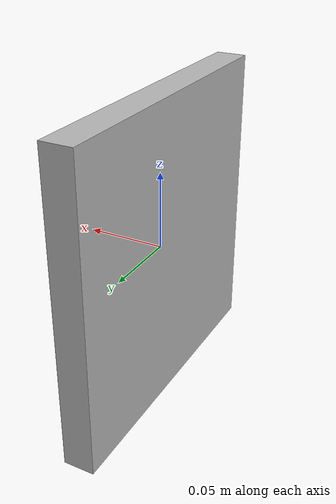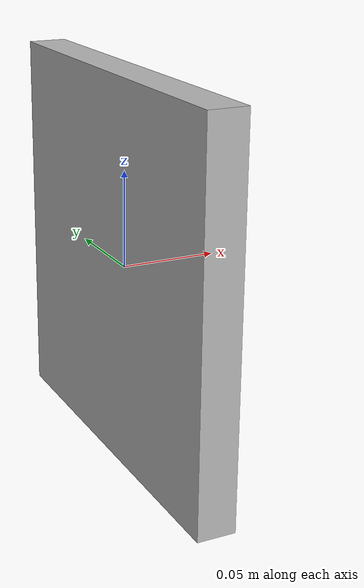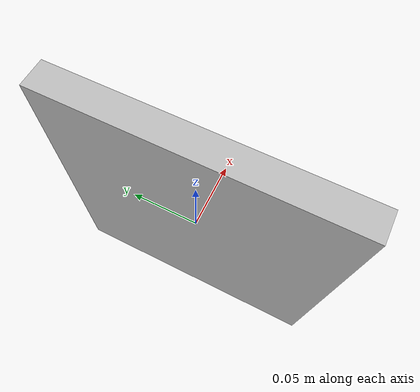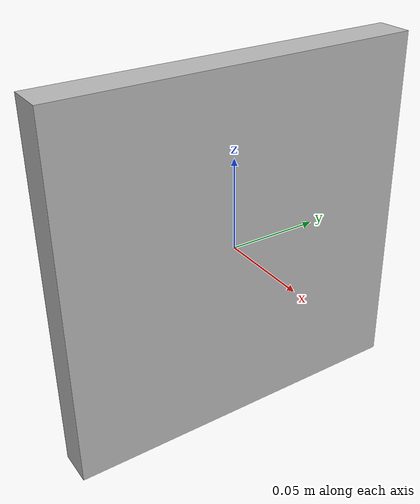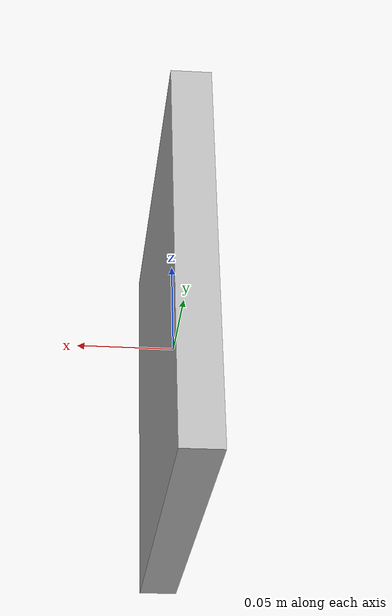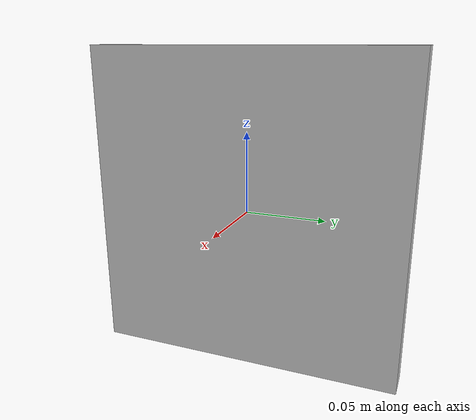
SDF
<?xml version="1.0"?>
<sdf version="1.6">
  <model name="wall_marker_10">
    <static>true</static>
    <link name="link">
      <visual name="visual">
        <geometry>
          <box>
            <size>0.02 0.20 0.20</size>
          </box>
        </geometry>
        <material>
          <script>
            <uri>model://wall_marker_10/materials/scripts</uri>
            <uri>model://wall_marker_10/materials/textures</uri>
            <name>WallMarker/Marker10</name>
          </script>
        </material>
      </visual>
      <collision name="collision">
        <geometry>
          <box>
            <size>0.02 0.20 0.20</size>
          </box>
        </geometry>
      </collision>
    </link>
  </model>
</sdf>
